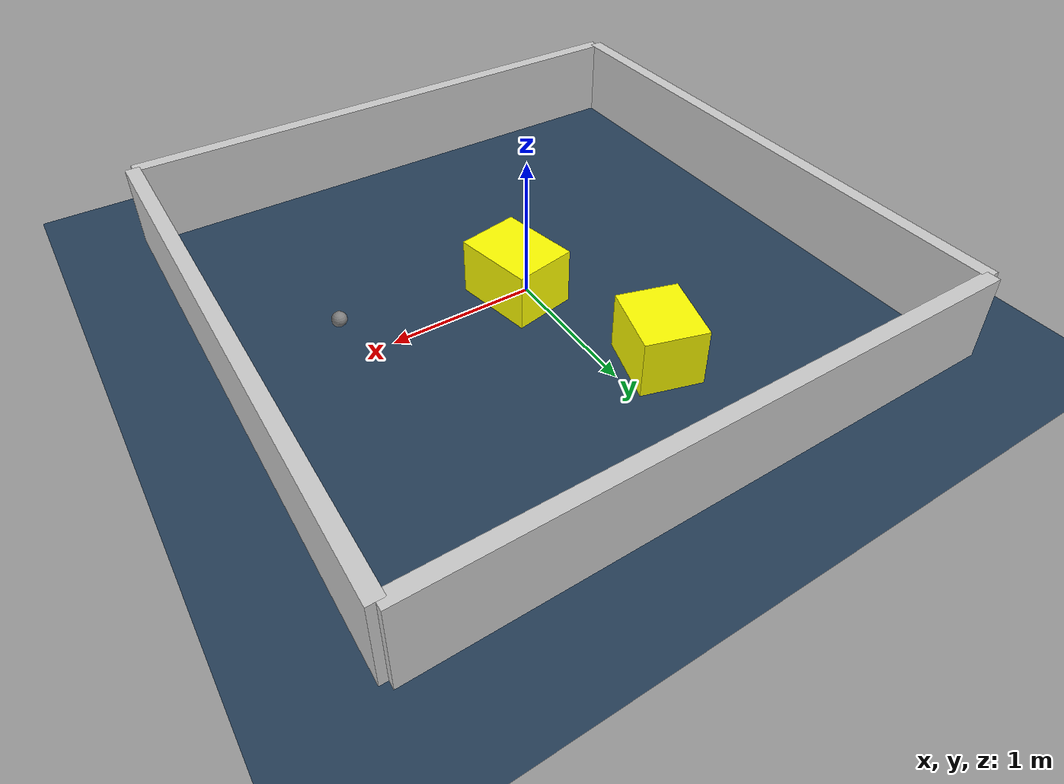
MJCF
<?xml version="1.0" ?>
<mujoco model="generated_environment">
  <option timestep="0.01" integrator="RK4" cone="elliptic"/>
  <default>
    <geom density="1"/>
  </default>
  <asset>
    <texture builtin="gradient" height="3072" rgb1="0.3 0.5 0.7" rgb2="0 0 0" type="skybox" width="512"/>
    <texture builtin="checker" height="300" mark="edge" markrgb="0.8 0.8 0.8" name="groundplane" rgb1="0.2 0.3 0.4" rgb2="0.1 0.2 0.3" type="2d" width="300"/>
    <material name="groundplane" reflectance="0.2" texrepeat="5 5" texture="groundplane" texuniform="true"/>
    <material name="robot" rgba="0.0 1.0 0.0 1"/>
  </asset>
  <worldbody>
    <light dir="0 0 -1" directional="true" pos="0 0 1.5"/>
    <geom condim="4" friction="1.0 0.005 0.001" material="groundplane" name="floor" size="0 0 0.05" type="plane"/>
    <body name="walls">
      <geom name="wall_1" condim="4" pos="-2.0 0.0 0.3" rgba="0.800000011920929 0.800000011920929 0.800000011920929 1.0" size="0.05 2.0 0.3" type="box"/>
      <geom name="wall_2" condim="4" pos="2.0 0.0 0.3" rgba="0.800000011920929 0.800000011920929 0.800000011920929 1.0" size="0.05 2.0 0.3" type="box"/>
      <geom name="wall_3" condim="4" pos="0.0 -2.0 0.3" rgba="0.800000011920929 0.800000011920929 0.800000011920929 1.0" size="2.0 0.05 0.3" type="box"/>
      <geom name="wall_4" condim="4" pos="0.0 2.0 0.3" rgba="0.800000011920929 0.800000011920929 0.800000011920929 1.0" size="2.0 0.05 0.3" type="box"/>
    </body>
    <body name="robot">
      <joint name="joint_x" type="slide" pos="0 0 0" axis="1 0 0"/>
      <joint name="joint_y" type="slide" pos="0 0 0" axis="0 1 0"/>
      <geom name="robot" type="sphere" pos="1.276501020182812 -0.17600087628239236 0.2" size="0.05" mass="5." friction="1.0 0.005 0.0001" condim="4"/>
      <site name="sensor_ball"/>
    </body>
    <body name="obstacle_1_movable">
      <geom name="obstacle_1_movable" condim="4" pos="-0.28830667645805685 1.0427764402289723 0.2" euler="0 0 73.82581350759116" friction="1.0 0.005 0.001" rgba="1 1 0 1" size="0.24019665748087482 0.2079361001168637 0.2" type="box" mass="0.1"/>
      <joint type="free"/>
    </body>
    <body name="obstacle_2_movable">
      <geom name="obstacle_2_movable" condim="4" pos="0.08456193667622292 0.0008202891949782298 0.2" euler="0 0 101.12694303805964" friction="1.0 0.005 0.001" rgba="1 1 0 1" size="0.2794375280958253 0.21604463230813575 0.2" type="box" mass="0.1"/>
      <joint type="free"/>
    </body>
  </worldbody>
  <actuator>
    <motor name="actuator_x" joint="joint_x" gear="1" ctrlrange="-1 1"/>
    <motor name="actuator_y" joint="joint_y" gear="1" ctrlrange="-1 1"/>
  </actuator>
</mujoco>
